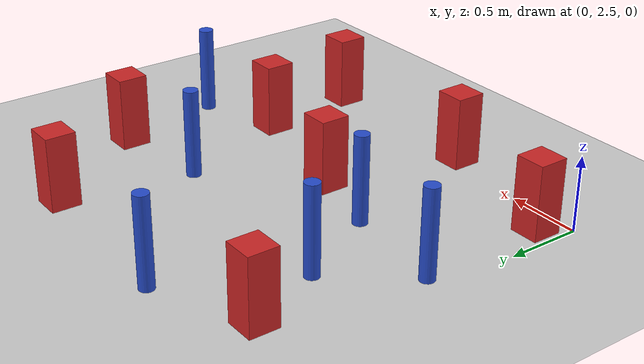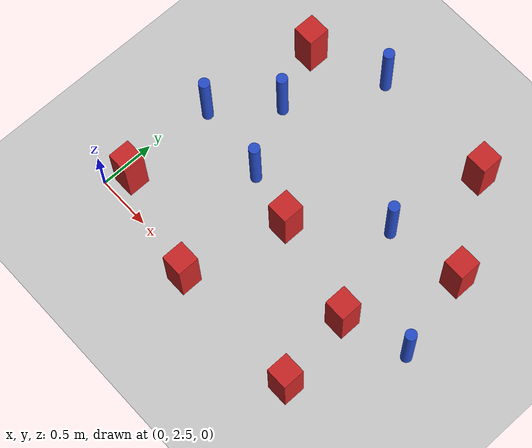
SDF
<sdf version="1.6">
 <world name="default">
  <model name="ground_plane">
   <static>1</static>
   <link name="link">
    <collision name="collision">
     <geometry><plane><normal>0 0 1</normal><size>100 100</size></plane></geometry>
     <surface><friction><ode><mu>100</mu><mu2>50</mu2></ode></friction></surface>
    </collision>
    <visual name="visual">
     <cast_shadows>0</cast_shadows>
     <geometry><plane><normal>0 0 1</normal><size>100 100</size></plane></geometry>
     <material>
      <ambient>1.0 1.0 1.0 1.0</ambient>
      <diffuse>0.8 0.8 0.8 1.0</diffuse>
      <specular>0.01 0.01 0.01 1.000000</specular>
     </material>
    </visual>
   </link>
  </model>
  <model name="pole_obstacle7">
   <static>true</static>
   <pose>0.109177409694 3.56442572552 -9.47619616065e-06 5.49618799737e-07 2.36310414059e-07 -1.550905348e-07</pose>
   <link name="link">
    <pose>0 0 0.3 0 -0 0</pose>
    <inertial>
     <mass>1</mass>
     <inertia><ixx>0.145833</ixx><ixy>0</ixy><ixz>0</ixz><iyy>0.145833</iyy><iyz>0</iyz><izz>0.125</izz></inertia>
    </inertial>
    <collision name="collision">
     <geometry><cylinder><radius>0.05</radius><length>.6</length></cylinder></geometry>
    </collision>
    <visual name="visual">
     <geometry><cylinder><radius>0.05</radius><length>.6</length></cylinder></geometry>
     <material>
      <script><name>Gazebo/Blue</name><uri>file://media/materials/scripts/gazebo.material</uri></script>
     </material>
    </visual>
   </link>
  </model>
  <model name="square_post_obstacle27">
   <static>true</static>
   <pose>0.303023351756 4.59528940576 -6.11067671241e-07 -5.50515727128e-06 -8.79689657224e-07 2.37013304536e-05</pose>
   <link name="link">
    <pose>0 0 0.25 0 -0 0</pose>
    <inertial>
     <mass>100</mass>
     <inertia>
      <ixx>0.166667</ixx>
      <ixy>0</ixy>
      <ixz>0</ixz>
      <iyy>0.166667</iyy>
      <iyz>0</iyz>
      <izz>0.166667</izz>
     </inertia>
    </inertial>
    <collision name="collision"><geometry><box><size>.2 .2 .5</size></box></geometry></collision>
    <visual name="visual">
     <geometry><box><size>.2 .2 .5</size></box></geometry>
     <material>
      <script><name>Gazebo/Red</name><uri>file://media/materials/scripts/gazebo.material</uri></script>
     </material>
    </visual>
   </link>
  </model>
  <model name="pole_obstacle20">
   <static>true</static>
   <pose>2.82236221573 3.30809473298 -9.47619616065e-06 5.49618799737e-07 2.36310414051e-07 -1.55090534807e-07</pose>
   <link name="link">
    <pose>0 0 0.3 0 -0 0</pose>
    <inertial>
     <mass>1</mass>
     <inertia><ixx>0.145833</ixx><ixy>0</ixy><ixz>0</ixz><iyy>0.145833</iyy><iyz>0</iyz><izz>0.125</izz></inertia>
    </inertial>
    <collision name="collision">
     <geometry><cylinder><radius>0.05</radius><length>.6</length></cylinder></geometry>
    </collision>
    <visual name="visual">
     <geometry><cylinder><radius>0.05</radius><length>.6</length></cylinder></geometry>
     <material>
      <script><name>Gazebo/Blue</name><uri>file://media/materials/scripts/gazebo.material</uri></script>
     </material>
    </visual>
   </link>
  </model>
  <model name="pole_obstacle21">
   <static>true</static>
   <pose>1.96439052846 3.95553086636 -9.47619616065e-06 5.49618799737e-07 2.36310414062e-07 -1.55090534799e-07</pose>
   <link name="link">
    <pose>0 0 0.3 0 -0 0</pose>
    <inertial>
     <mass>1</mass>
     <inertia><ixx>0.145833</ixx><ixy>0</ixy><ixz>0</ixz><iyy>0.145833</iyy><iyz>0</iyz><izz>0.125</izz></inertia>
    </inertial>
    <collision name="collision">
     <geometry><cylinder><radius>0.05</radius><length>.6</length></cylinder></geometry>
    </collision>
    <visual name="visual">
     <geometry><cylinder><radius>0.05</radius><length>.6</length></cylinder></geometry>
     <material>
      <script><name>Gazebo/Blue</name><uri>file://media/materials/scripts/gazebo.material</uri></script>
     </material>
    </visual>
   </link>
  </model>
  <model name="square_post_obstacle34">
   <static>true</static>
   <pose>2.64815634647 4.05208043156 -6.11067671241e-07 -5.50515727128e-06 -8.79689657224e-07 2.37013304536e-05</pose>
   <link name="link">
    <pose>0 0 0.25 0 -0 0</pose>
    <inertial>
     <mass>100</mass>
     <inertia>
      <ixx>0.166667</ixx>
      <ixy>0</ixy>
      <ixz>0</ixz>
      <iyy>0.166667</iyy>
      <iyz>0</iyz>
      <izz>0.166667</izz>
     </inertia>
    </inertial>
    <collision name="collision"><geometry><box><size>.2 .2 .5</size></box></geometry></collision>
    <visual name="visual">
     <geometry><box><size>.2 .2 .5</size></box></geometry>
     <material>
      <script><name>Gazebo/Red</name><uri>file://media/materials/scripts/gazebo.material</uri></script>
     </material>
    </visual>
   </link>
  </model>
  <model name="pole_obstacle37">
   <static>true</static>
   <pose>0.829820177629 3.47332278502 -9.47619616065e-06 5.49618799737e-07 2.36310414066e-07 -1.55090534797e-07</pose>
   <link name="link">
    <pose>0 0 0.3 0 -0 0</pose>
    <inertial>
     <mass>1</mass>
     <inertia><ixx>0.145833</ixx><ixy>0</ixy><ixz>0</ixz><iyy>0.145833</iyy><iyz>0</iyz><izz>0.125</izz></inertia>
    </inertial>
    <collision name="collision">
     <geometry><cylinder><radius>0.05</radius><length>.6</length></cylinder></geometry>
    </collision>
    <visual name="visual">
     <geometry><cylinder><radius>0.05</radius><length>.6</length></cylinder></geometry>
     <material>
      <script><name>Gazebo/Blue</name><uri>file://media/materials/scripts/gazebo.material</uri></script>
     </material>
    </visual>
   </link>
  </model>
  <model name="square_post_obstacle39">
   <static>true</static>
   <pose>1.34331770689 3.34765384902 -6.11067671241e-07 -5.50515727128e-06 -8.79689657224e-07 2.37013304536e-05</pose>
   <link name="link">
    <pose>0 0 0.25 0 -0 0</pose>
    <inertial>
     <mass>100</mass>
     <inertia>
      <ixx>0.166667</ixx>
      <ixy>0</ixy>
      <ixz>0</ixz>
      <iyy>0.166667</iyy>
      <iyz>0</iyz>
      <izz>0.166667</izz>
     </inertia>
    </inertial>
    <collision name="collision"><geometry><box><size>.2 .2 .5</size></box></geometry></collision>
    <visual name="visual">
     <geometry><box><size>.2 .2 .5</size></box></geometry>
     <material>
      <script><name>Gazebo/Red</name><uri>file://media/materials/scripts/gazebo.material</uri></script>
     </material>
    </visual>
   </link>
  </model>
  <model name="square_post_obstacle57">
   <static>true</static>
   <pose>0.138514433468 2.68636189492 -6.11067671241e-07 -5.50515727128e-06 -8.79689657224e-07 2.37013304536e-05</pose>
   <link name="link">
    <pose>0 0 0.25 0 -0 0</pose>
    <inertial>
     <mass>100</mass>
     <inertia>
      <ixx>0.166667</ixx>
      <ixy>0</ixy>
      <ixz>0</ixz>
      <iyy>0.166667</iyy>
      <iyz>0</iyz>
      <izz>0.166667</izz>
     </inertia>
    </inertial>
    <collision name="collision"><geometry><box><size>.2 .2 .5</size></box></geometry></collision>
    <visual name="visual">
     <geometry><box><size>.2 .2 .5</size></box></geometry>
     <material>
      <script><name>Gazebo/Red</name><uri>file://media/materials/scripts/gazebo.material</uri></script>
     </material>
    </visual>
   </link>
  </model>
  <model name="pole_obstacle66">
   <static>true</static>
   <pose>0.947929157784 4.87894180601 -9.47619616065e-06 5.49618799737e-07 2.36310414065e-07 -1.55090534796e-07</pose>
   <link name="link">
    <pose>0 0 0.3 0 -0 0</pose>
    <inertial>
     <mass>1</mass>
     <inertia><ixx>0.145833</ixx><ixy>0</ixy><ixz>0</ixz><iyy>0.145833</iyy><iyz>0</iyz><izz>0.125</izz></inertia>
    </inertial>
    <collision name="collision">
     <geometry><cylinder><radius>0.05</radius><length>.6</length></cylinder></geometry>
    </collision>
    <visual name="visual">
     <geometry><cylinder><radius>0.05</radius><length>.6</length></cylinder></geometry>
     <material>
      <script><name>Gazebo/Blue</name><uri>file://media/materials/scripts/gazebo.material</uri></script>
     </material>
    </visual>
   </link>
  </model>
  <model name="square_post_obstacle75">
   <static>true</static>
   <pose>2.35403181394 2.42062252915 -6.11067671241e-07 -5.50515727128e-06 -8.79689657224e-07 2.37013304536e-05</pose>
   <link name="link">
    <pose>0 0 0.25 0 -0 0</pose>
    <inertial>
     <mass>100</mass>
     <inertia>
      <ixx>0.166667</ixx>
      <ixy>0</ixy>
      <ixz>0</ixz>
      <iyy>0.166667</iyy>
      <iyz>0</iyz>
      <izz>0.166667</izz>
     </inertia>
    </inertial>
    <collision name="collision"><geometry><box><size>.2 .2 .5</size></box></geometry></collision>
    <visual name="visual">
     <geometry><box><size>.2 .2 .5</size></box></geometry>
     <material>
      <script><name>Gazebo/Red</name><uri>file://media/materials/scripts/gazebo.material</uri></script>
     </material>
    </visual>
   </link>
  </model>
  <model name="square_post_obstacle91">
   <static>true</static>
   <pose>2.25764990404 3.12575136851 -6.11067671241e-07 -5.50515727128e-06 -8.79689657224e-07 2.37013304536e-05</pose>
   <link name="link">
    <pose>0 0 0.25 0 -0 0</pose>
    <inertial>
     <mass>100</mass>
     <inertia>
      <ixx>0.166667</ixx>
      <ixy>0</ixy>
      <ixz>0</ixz>
      <iyy>0.166667</iyy>
      <iyz>0</iyz>
      <izz>0.166667</izz>
     </inertia>
    </inertial>
    <collision name="collision"><geometry><box><size>.2 .2 .5</size></box></geometry></collision>
    <visual name="visual">
     <geometry><box><size>.2 .2 .5</size></box></geometry>
     <material>
      <script><name>Gazebo/Red</name><uri>file://media/materials/scripts/gazebo.material</uri></script>
     </material>
    </visual>
   </link>
  </model>
  <model name="square_post_obstacle105">
   <static>true</static>
   <pose>1.10638772678 2.43019626495 -6.11067671241e-07 -5.50515727128e-06 -8.79689657224e-07 2.37013304536e-05</pose>
   <link name="link">
    <pose>0 0 0.25 0 -0 0</pose>
    <inertial>
     <mass>100</mass>
     <inertia>
      <ixx>0.166667</ixx>
      <ixy>0</ixy>
      <ixz>0</ixz>
      <iyy>0.166667</iyy>
      <iyz>0</iyz>
      <izz>0.166667</izz>
     </inertia>
    </inertial>
    <collision name="collision"><geometry><box><size>.2 .2 .5</size></box></geometry></collision>
    <visual name="visual">
     <geometry><box><size>.2 .2 .5</size></box></geometry>
     <material>
      <script><name>Gazebo/Red</name><uri>file://media/materials/scripts/gazebo.material</uri></script>
     </material>
    </visual>
   </link>
  </model>
  <model name="square_post_obstacle109">
   <static>true</static>
   <pose>2.12340740426 4.83334186187 -6.11067671241e-07 -5.50515727128e-06 -8.79689657224e-07 2.37013304536e-05</pose>
   <link name="link">
    <pose>0 0 0.25 0 -0 0</pose>
    <inertial>
     <mass>100</mass>
     <inertia>
      <ixx>0.166667</ixx>
      <ixy>0</ixy>
      <ixz>0</ixz>
      <iyy>0.166667</iyy>
      <iyz>0</iyz>
      <izz>0.166667</izz>
     </inertia>
    </inertial>
    <collision name="collision"><geometry><box><size>.2 .2 .5</size></box></geometry></collision>
    <visual name="visual">
     <geometry><box><size>.2 .2 .5</size></box></geometry>
     <material>
      <script><name>Gazebo/Red</name><uri>file://media/materials/scripts/gazebo.material</uri></script>
     </material>
    </visual>
   </link>
  </model>
  <model name="pole_obstacle169">
   <static>true</static>
   <pose>0.51489567048 4.06574603866 -9.47619616065e-06 5.49618799737e-07 2.36310414064e-07 -1.55090534796e-07</pose>
   <link name="link">
    <pose>0 0 0.3 0 -0 0</pose>
    <inertial>
     <mass>1</mass>
     <inertia><ixx>0.145833</ixx><ixy>0</ixy><ixz>0</ixz><iyy>0.145833</iyy><iyz>0</iyz><izz>0.125</izz></inertia>
    </inertial>
    <collision name="collision">
     <geometry><cylinder><radius>0.05</radius><length>.6</length></cylinder></geometry>
    </collision>
    <visual name="visual">
     <geometry><cylinder><radius>0.05</radius><length>.6</length></cylinder></geometry>
     <material>
      <script><name>Gazebo/Blue</name><uri>file://media/materials/scripts/gazebo.material</uri></script>
     </material>
    </visual>
   </link>
  </model>
 </world>
</sdf>
